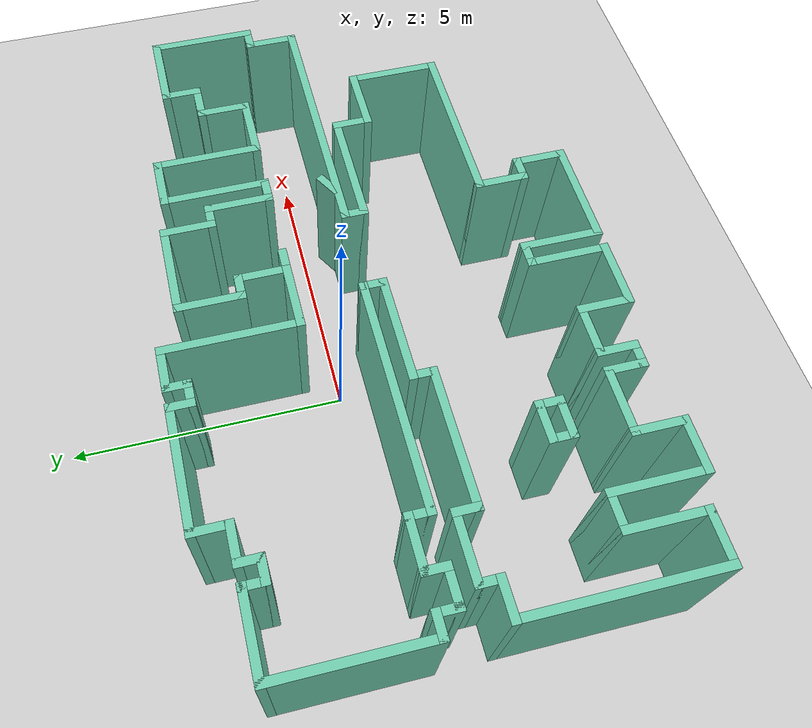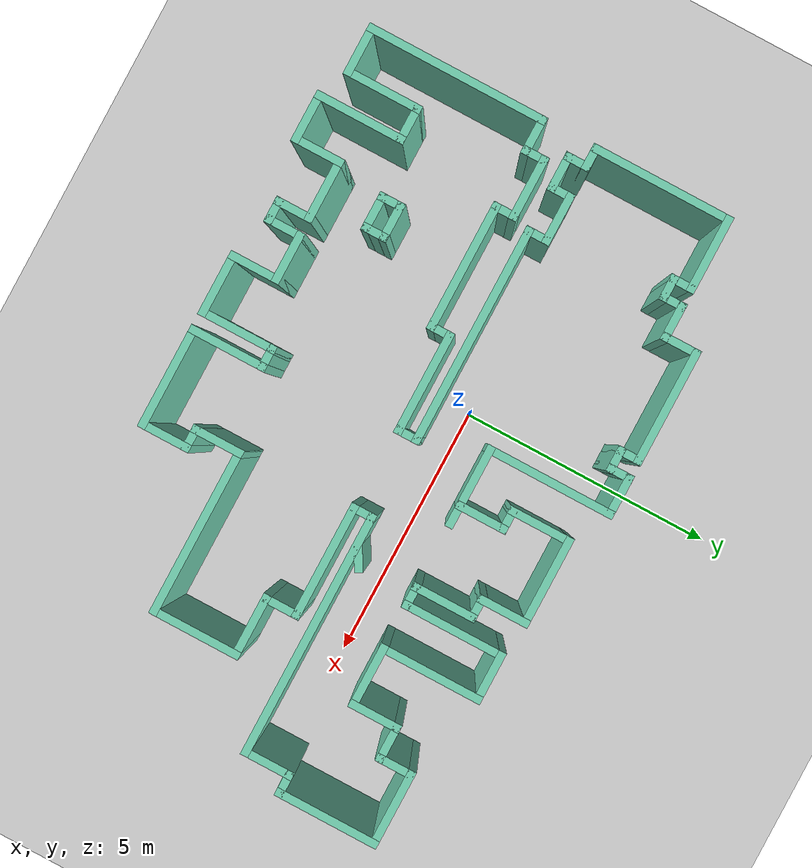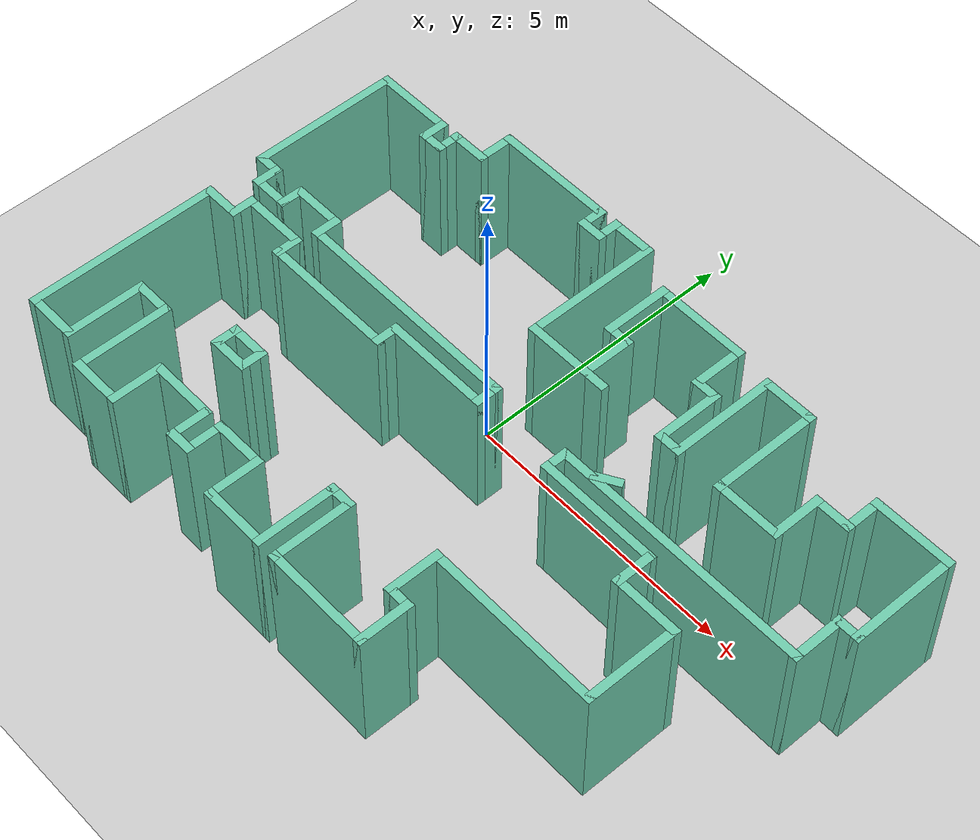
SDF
<sdf version="1.6">
 <world name="default">
  <model name="ground_plane">
   <static>1</static>
   <link name="link">
    <collision name="collision">
     <geometry><plane><normal>0 0 1</normal><size>100 100</size></plane></geometry>
     <surface><friction><ode><mu>100</mu><mu2>50</mu2></ode></friction></surface>
    </collision>
    <visual name="visual">
     <cast_shadows>0</cast_shadows>
     <geometry><plane><normal>0 0 1</normal><size>100 100</size></plane></geometry>
     <material>
      <script><uri>file://media/materials/scripts/gazebo.material</uri><name>Gazebo/Grey</name></script>
     </material>
    </visual>
   </link>
  </model>
  <model name="map_89">
   <pose>1.14786 -0.969394 0 0 -0 0</pose>
   <link name="Wall_10">
    <collision name="Wall_10_Collision">
     <geometry><box><size>0.5 0.15 2.5</size></box></geometry>
     <pose>0 0 1.25 0 -0 0</pose>
    </collision>
    <visual name="Wall_10_Visual">
     <pose>0 0 1.25 0 -0 0</pose>
     <geometry><box><size>0.5 0.15 2.5</size></box></geometry>
     <material>
      <script><uri>file://media/materials/scripts/gazebo.material</uri><name>Gazebo/Grey</name></script>
      <ambient>0.435294 0.796078 0.67451 1</ambient>
     </material>
     <meta><layer>0</layer></meta>
    </visual>
    <pose>-4.675 2.975 0 0 -0 3.14159</pose>
   </link>
   <link name="Wall_100">
    <collision name="Wall_100_Collision">
     <geometry><box><size>0.5 0.15 2.5</size></box></geometry>
     <pose>0 0 1.25 0 -0 0</pose>
    </collision>
    <visual name="Wall_100_Visual">
     <pose>0 0 1.25 0 -0 0</pose>
     <geometry><box><size>0.5 0.15 2.5</size></box></geometry>
     <material>
      <script><uri>file://media/materials/scripts/gazebo.material</uri><name>Gazebo/Grey</name></script>
      <ambient>0.435294 0.796078 0.67451 1</ambient>
     </material>
     <meta><layer>0</layer></meta>
    </visual>
    <pose>-3.1182 -1.95837 0 0 -0 1.5708</pose>
   </link>
   <link name="Wall_101">
    <collision name="Wall_101_Collision">
     <geometry><box><size>0.75 0.15 2.5</size></box></geometry>
     <pose>0 0 1.25 0 -0 0</pose>
    </collision>
    <visual name="Wall_101_Visual">
     <pose>0 0 1.25 0 -0 0</pose>
     <geometry><box><size>0.75 0.15 2.5</size></box></geometry>
     <material>
      <script><uri>file://media/materials/scripts/gazebo.material</uri><name>Gazebo/Grey</name></script>
      <ambient>0.435294 0.796078 0.67451 1</ambient>
     </material>
     <meta><layer>0</layer></meta>
    </visual>
    <pose>-3.41819 -1.78337 0 0 -0 3.14159</pose>
   </link>
   <link name="Wall_11">
    <collision name="Wall_11_Collision">
     <geometry><box><size>0.5 0.15 2.5</size></box></geometry>
     <pose>0 0 1.25 0 -0 0</pose>
    </collision>
    <visual name="Wall_11_Visual">
     <pose>0 0 1.25 0 -0 0</pose>
     <geometry><box><size>0.5 0.15 2.5</size></box></geometry>
     <material>
      <script><uri>file://media/materials/scripts/gazebo.material</uri><name>Gazebo/Grey</name></script>
      <ambient>0.435294 0.796078 0.67451 1</ambient>
     </material>
     <meta><layer>0</layer></meta>
    </visual>
    <pose>-4.85 3.15 0 0 -0 1.5708</pose>
   </link>
   <link name="Wall_12">
    <collision name="Wall_12_Collision">
     <geometry><box><size>1.5 0.15 2.5</size></box></geometry>
     <pose>0 0 1.25 0 -0 0</pose>
    </collision>
    <visual name="Wall_12_Visual">
     <pose>0 0 1.25 0 -0 0</pose>
     <geometry><box><size>1.5 0.15 2.5</size></box></geometry>
     <material>
      <script><uri>file://media/materials/scripts/gazebo.material</uri><name>Gazebo/Grey</name></script>
      <ambient>0.435294 0.796078 0.67451 1</ambient>
     </material>
     <meta><layer>0</layer></meta>
    </visual>
    <pose>-5.525 3.325 0 0 -0 3.14159</pose>
   </link>
   <link name="Wall_13">
    <collision name="Wall_13_Collision">
     <geometry><box><size>2.75 0.15 2.5</size></box></geometry>
     <pose>0 0 1.25 0 -0 0</pose>
    </collision>
    <visual name="Wall_13_Visual">
     <pose>0 0 1.25 0 -0 0</pose>
     <geometry><box><size>2.75 0.15 2.5</size></box></geometry>
     <material>
      <script><uri>file://media/materials/scripts/gazebo.material</uri><name>Gazebo/Grey</name></script>
      <ambient>0.435294 0.796078 0.67451 1</ambient>
     </material>
     <meta><layer>0</layer></meta>
    </visual>
    <pose>-6.2 2.025 0 0 -0 -1.5708</pose>
   </link>
   <link name="Wall_14">
    <collision name="Wall_14_Collision">
     <geometry><box><size>0.5 0.15 2.5</size></box></geometry>
     <pose>0 0 1.25 0 -0 0</pose>
    </collision>
    <visual name="Wall_14_Visual">
     <pose>0 0 1.25 0 -0 0</pose>
     <geometry><box><size>0.5 0.15 2.5</size></box></geometry>
     <material>
      <script><uri>file://media/materials/scripts/gazebo.material</uri><name>Gazebo/Grey</name></script>
      <ambient>0.435294 0.796078 0.67451 1</ambient>
     </material>
     <meta><layer>0</layer></meta>
    </visual>
    <pose>-6.025 0.725 0 0 -0 0</pose>
   </link>
   <link name="Wall_15">
    <collision name="Wall_15_Collision">
     <geometry><box><size>0.5 0.15 2.5</size></box></geometry>
     <pose>0 0 1.25 0 -0 0</pose>
    </collision>
    <visual name="Wall_15_Visual">
     <pose>0 0 1.25 0 -0 0</pose>
     <geometry><box><size>0.5 0.15 2.5</size></box></geometry>
     <material>
      <script><uri>file://media/materials/scripts/gazebo.material</uri><name>Gazebo/Grey</name></script>
      <ambient>0.435294 0.796078 0.67451 1</ambient>
     </material>
     <meta><layer>0</layer></meta>
    </visual>
    <pose>-5.85 0.55 0 0 -0 -1.5708</pose>
   </link>
   <link name="Wall_16">
    <collision name="Wall_16_Collision">
     <geometry><box><size>0.75 0.15 2.5</size></box></geometry>
     <pose>0 0 1.25 0 -0 0</pose>
    </collision>
    <visual name="Wall_16_Visual">
     <pose>0 0 1.25 0 -0 0</pose>
     <geometry><box><size>0.75 0.15 2.5</size></box></geometry>
     <material>
      <script><uri>file://media/materials/scripts/gazebo.material</uri><name>Gazebo/Grey</name></script>
      <ambient>0.435294 0.796078 0.67451 1</ambient>
     </material>
     <meta><layer>0</layer></meta>
    </visual>
    <pose>-5.55 0.375 0 0 -0 0</pose>
   </link>
   <link name="Wall_17">
    <collision name="Wall_17_Collision">
     <geometry><box><size>0.5 0.15 2.5</size></box></geometry>
     <pose>0 0 1.25 0 -0 0</pose>
    </collision>
    <visual name="Wall_17_Visual">
     <pose>0 0 1.25 0 -0 0</pose>
     <geometry><box><size>0.5 0.15 2.5</size></box></geometry>
     <material>
      <script><uri>file://media/materials/scripts/gazebo.material</uri><name>Gazebo/Grey</name></script>
      <ambient>0.435294 0.796078 0.67451 1</ambient>
     </material>
     <meta><layer>0</layer></meta>
    </visual>
    <pose>-5.25 0.55 0 0 -0 1.5708</pose>
   </link>
   <link name="Wall_18">
    <collision name="Wall_18_Collision">
     <geometry><box><size>1 0.15 2.5</size></box></geometry>
     <pose>0 0 1.25 0 -0 0</pose>
    </collision>
    <visual name="Wall_18_Visual">
     <pose>0 0 1.25 0 -0 0</pose>
     <geometry><box><size>1 0.15 2.5</size></box></geometry>
     <material>
      <script><uri>file://media/materials/scripts/gazebo.material</uri><name>Gazebo/Grey</name></script>
      <ambient>0.435294 0.796078 0.67451 1</ambient>
     </material>
     <meta><layer>0</layer></meta>
    </visual>
    <pose>-4.825 0.725 0 0 -0 0</pose>
   </link>
   <link name="Wall_19">
    <collision name="Wall_19_Collision">
     <geometry><box><size>0.5 0.15 2.5</size></box></geometry>
     <pose>0 0 1.25 0 -0 0</pose>
    </collision>
    <visual name="Wall_19_Visual">
     <pose>0 0 1.25 0 -0 0</pose>
     <geometry><box><size>0.5 0.15 2.5</size></box></geometry>
     <material>
      <script><uri>file://media/materials/scripts/gazebo.material</uri><name>Gazebo/Grey</name></script>
      <ambient>0.435294 0.796078 0.67451 1</ambient>
     </material>
     <meta><layer>0</layer></meta>
    </visual>
    <pose>-4.4 0.55 0 0 -0 -1.5708</pose>
   </link>
   <link name="Wall_2">
    <collision name="Wall_2_Collision">
     <geometry><box><size>0.75 0.15 2.5</size></box></geometry>
     <pose>0 0 1.25 0 -0 0</pose>
    </collision>
    <visual name="Wall_2_Visual">
     <pose>0 0 1.25 0 -0 0</pose>
     <geometry><box><size>0.75 0.15 2.5</size></box></geometry>
     <material>
      <script><uri>file://media/materials/scripts/gazebo.material</uri><name>Gazebo/Grey</name></script>
      <ambient>0.435294 0.796078 0.67451 1</ambient>
     </material>
     <meta><layer>0</layer></meta>
    </visual>
    <pose>-1.15 3.925 0 0 -0 3.14159</pose>
   </link>
   <link name="Wall_20">
    <collision name="Wall_20_Collision">
     <geometry><box><size>4.25 0.15 2.5</size></box></geometry>
     <pose>0 0 1.25 0 -0 0</pose>
    </collision>
    <visual name="Wall_20_Visual">
     <pose>0 0 1.25 0 -0 0</pose>
     <geometry><box><size>4.25 0.15 2.5</size></box></geometry>
     <material>
      <script><uri>file://media/materials/scripts/gazebo.material</uri><name>Gazebo/Grey</name></script>
      <ambient>0.435294 0.796078 0.67451 1</ambient>
     </material>
     <meta><layer>0</layer></meta>
    </visual>
    <pose>-2.35 0.375 0 0 -0 0</pose>
   </link>
   <link name="Wall_21">
    <collision name="Wall_21_Collision">
     <geometry><box><size>0.5 0.15 2.5</size></box></geometry>
     <pose>0 0 1.25 0 -0 0</pose>
    </collision>
    <visual name="Wall_21_Visual">
     <pose>0 0 1.25 0 -0 0</pose>
     <geometry><box><size>0.5 0.15 2.5</size></box></geometry>
     <material>
      <script><uri>file://media/materials/scripts/gazebo.material</uri><name>Gazebo/Grey</name></script>
      <ambient>0.435294 0.796078 0.67451 1</ambient>
     </material>
     <meta><layer>0</layer></meta>
    </visual>
    <pose>-0.3 0.2 0 0 -0 -1.5708</pose>
   </link>
   <link name="Wall_22">
    <collision name="Wall_22_Collision">
     <geometry><box><size>2 0.15 2.5</size></box></geometry>
     <pose>0 0 1.25 0 -0 0</pose>
    </collision>
    <visual name="Wall_22_Visual">
     <pose>0 0 1.25 0 -0 0</pose>
     <geometry><box><size>2 0.15 2.5</size></box></geometry>
     <material>
      <script><uri>file://media/materials/scripts/gazebo.material</uri><name>Gazebo/Grey</name></script>
      <ambient>0.435294 0.796078 0.67451 1</ambient>
     </material>
     <meta><layer>0</layer></meta>
    </visual>
    <pose>-1.225 0.025 0 0 -0 3.14159</pose>
   </link>
   <link name="Wall_23">
    <collision name="Wall_23_Collision">
     <geometry><box><size>0.5 0.15 2.5</size></box></geometry>
     <pose>0 0 1.25 0 -0 0</pose>
    </collision>
    <visual name="Wall_23_Visual">
     <pose>0 0 1.25 0 -0 0</pose>
     <geometry><box><size>0.5 0.15 2.5</size></box></geometry>
     <material>
      <script><uri>file://media/materials/scripts/gazebo.material</uri><name>Gazebo/Grey</name></script>
      <ambient>0.435294 0.796078 0.67451 1</ambient>
     </material>
     <meta><layer>0</layer></meta>
    </visual>
    <pose>-2.15 -0.15 0 0 -0 -1.5708</pose>
   </link>
   <link name="Wall_24">
    <collision name="Wall_24_Collision">
     <geometry><box><size>2.5 0.15 2.5</size></box></geometry>
     <pose>0 0 1.25 0 -0 0</pose>
    </collision>
    <visual name="Wall_24_Visual">
     <pose>0 0 1.25 0 -0 0</pose>
     <geometry><box><size>2.5 0.15 2.5</size></box></geometry>
     <material>
      <script><uri>file://media/materials/scripts/gazebo.material</uri><name>Gazebo/Grey</name></script>
      <ambient>0.435294 0.796078 0.67451 1</ambient>
     </material>
     <meta><layer>0</layer></meta>
    </visual>
    <pose>-3.325 -0.325 0 0 -0 3.14159</pose>
   </link>
   <link name="Wall_25">
    <collision name="Wall_25_Collision">
     <geometry><box><size>0.5 0.15 2.5</size></box></geometry>
     <pose>0 0 1.25 0 -0 0</pose>
    </collision>
    <visual name="Wall_25_Visual">
     <pose>0 0 1.25 0 -0 0</pose>
     <geometry><box><size>0.5 0.15 2.5</size></box></geometry>
     <material>
      <script><uri>file://media/materials/scripts/gazebo.material</uri><name>Gazebo/Grey</name></script>
      <ambient>0.435294 0.796078 0.67451 1</ambient>
     </material>
     <meta><layer>0</layer></meta>
    </visual>
    <pose>-4.5 -0.15 0 0 -0 1.5708</pose>
   </link>
   <link name="Wall_26">
    <collision name="Wall_26_Collision">
     <geometry><box><size>1.25 0.15 2.5</size></box></geometry>
     <pose>0 0 1.25 0 -0 0</pose>
    </collision>
    <visual name="Wall_26_Visual">
     <pose>0 0 1.25 0 -0 0</pose>
     <geometry><box><size>1.25 0.15 2.5</size></box></geometry>
     <material>
      <script><uri>file://media/materials/scripts/gazebo.material</uri><name>Gazebo/Grey</name></script>
      <ambient>0.435294 0.796078 0.67451 1</ambient>
     </material>
     <meta><layer>0</layer></meta>
    </visual>
    <pose>-5.05 0.025 0 0 -0 3.14159</pose>
   </link>
   <link name="Wall_27">
    <collision name="Wall_27_Collision">
     <geometry><box><size>0.5 0.15 2.5</size></box></geometry>
     <pose>0 0 1.25 0 -0 0</pose>
    </collision>
    <visual name="Wall_27_Visual">
     <pose>0 0 1.25 0 -0 0</pose>
     <geometry><box><size>0.5 0.15 2.5</size></box></geometry>
     <material>
      <script><uri>file://media/materials/scripts/gazebo.material</uri><name>Gazebo/Grey</name></script>
      <ambient>0.435294 0.796078 0.67451 1</ambient>
     </material>
     <meta><layer>0</layer></meta>
    </visual>
    <pose>-5.6 -0.15 0 0 -0 -1.5708</pose>
   </link>
   <link name="Wall_28">
    <collision name="Wall_28_Collision">
     <geometry><box><size>0.75 0.15 2.5</size></box></geometry>
     <pose>0 0 1.25 0 -0 0</pose>
    </collision>
    <visual name="Wall_28_Visual">
     <pose>0 0 1.25 0 -0 0</pose>
     <geometry><box><size>0.75 0.15 2.5</size></box></geometry>
     <material>
      <script><uri>file://media/materials/scripts/gazebo.material</uri><name>Gazebo/Grey</name></script>
      <ambient>0.435294 0.796078 0.67451 1</ambient>
     </material>
     <meta><layer>0</layer></meta>
    </visual>
    <pose>-5.9 -0.325 0 0 -0 3.14159</pose>
   </link>
   <link name="Wall_29">
    <collision name="Wall_29_Collision">
     <geometry><box><size>3.5 0.15 2.5</size></box></geometry>
     <pose>0 0 1.25 0 -0 0</pose>
    </collision>
    <visual name="Wall_29_Visual">
     <pose>0 0 1.25 0 -0 0</pose>
     <geometry><box><size>3.5 0.15 2.5</size></box></geometry>
     <material>
      <script><uri>file://media/materials/scripts/gazebo.material</uri><name>Gazebo/Grey</name></script>
      <ambient>0.435294 0.796078 0.67451 1</ambient>
     </material>
     <meta><layer>0</layer></meta>
    </visual>
    <pose>-6.2 -2 0 0 -0 -1.5708</pose>
   </link>
   <link name="Wall_3">
    <collision name="Wall_3_Collision">
     <geometry><box><size>0.5 0.15 2.5</size></box></geometry>
     <pose>0 0 1.25 0 -0 0</pose>
    </collision>
    <visual name="Wall_3_Visual">
     <pose>0 0 1.25 0 -0 0</pose>
     <geometry><box><size>0.5 0.15 2.5</size></box></geometry>
     <material>
      <script><uri>file://media/materials/scripts/gazebo.material</uri><name>Gazebo/Grey</name></script>
      <ambient>0.435294 0.796078 0.67451 1</ambient>
     </material>
     <meta><layer>0</layer></meta>
    </visual>
    <pose>-1.45 3.75 0 0 -0 -1.5708</pose>
   </link>
   <link name="Wall_30">
    <collision name="Wall_30_Collision">
     <geometry><box><size>1 0.15 2.5</size></box></geometry>
     <pose>0 0 1.25 0 -0 0</pose>
    </collision>
    <visual name="Wall_30_Visual">
     <pose>0 0 1.25 0 -0 0</pose>
     <geometry><box><size>1 0.15 2.5</size></box></geometry>
     <material>
      <script><uri>file://media/materials/scripts/gazebo.material</uri><name>Gazebo/Grey</name></script>
      <ambient>0.435294 0.796078 0.67451 1</ambient>
     </material>
     <meta><layer>0</layer></meta>
    </visual>
    <pose>-5.775 -3.675 0 0 -0 0</pose>
   </link>
   <link name="Wall_31">
    <collision name="Wall_31_Collision">
     <geometry><box><size>1.5 0.15 2.5</size></box></geometry>
     <pose>0 0 1.25 0 -0 0</pose>
    </collision>
    <visual name="Wall_31_Visual">
     <pose>0 0 1.25 0 -0 0</pose>
     <geometry><box><size>1.5 0.15 2.5</size></box></geometry>
     <material>
      <script><uri>file://media/materials/scripts/gazebo.material</uri><name>Gazebo/Grey</name></script>
      <ambient>0.435294 0.796078 0.67451 1</ambient>
     </material>
     <meta><layer>0</layer></meta>
    </visual>
    <pose>-5.35 -3 0 0 -0 1.5708</pose>
   </link>
   <link name="Wall_32">
    <collision name="Wall_32_Collision">
     <geometry><box><size>0.75 0.15 2.5</size></box></geometry>
     <pose>0 0 1.25 0 -0 0</pose>
    </collision>
    <visual name="Wall_32_Visual">
     <pose>0 0 1.25 0 -0 0</pose>
     <geometry><box><size>0.75 0.15 2.5</size></box></geometry>
     <material>
      <script><uri>file://media/materials/scripts/gazebo.material</uri><name>Gazebo/Grey</name></script>
      <ambient>0.435294 0.796078 0.67451 1</ambient>
     </material>
     <meta><layer>0</layer></meta>
    </visual>
    <pose>-5.05 -2.325 0 0 -0 0</pose>
   </link>
   <link name="Wall_33">
    <collision name="Wall_33_Collision">
     <geometry><box><size>1.75 0.15 2.5</size></box></geometry>
     <pose>0 0 1.25 0 -0 0</pose>
    </collision>
    <visual name="Wall_33_Visual">
     <pose>0 0 1.25 0 -0 0</pose>
     <geometry><box><size>1.75 0.15 2.5</size></box></geometry>
     <material>
      <script><uri>file://media/materials/scripts/gazebo.material</uri><name>Gazebo/Grey</name></script>
      <ambient>0.435294 0.796078 0.67451 1</ambient>
     </material>
     <meta><layer>0</layer></meta>
    </visual>
    <pose>-4.75 -3.125 0 0 -0 -1.5708</pose>
   </link>
   <link name="Wall_34">
    <collision name="Wall_34_Collision">
     <geometry><box><size>1 0.15 2.5</size></box></geometry>
     <pose>0 0 1.25 0 -0 0</pose>
    </collision>
    <visual name="Wall_34_Visual">
     <pose>0 0 1.25 0 -0 0</pose>
     <geometry><box><size>1 0.15 2.5</size></box></geometry>
     <material>
      <script><uri>file://media/materials/scripts/gazebo.material</uri><name>Gazebo/Grey</name></script>
      <ambient>0.435294 0.796078 0.67451 1</ambient>
     </material>
     <meta><layer>0</layer></meta>
    </visual>
    <pose>-4.325 -3.925 0 0 -0 0</pose>
   </link>
   <link name="Wall_37">
    <collision name="Wall_37_Collision">
     <geometry><box><size>1 0.15 2.5</size></box></geometry>
     <pose>0 0 1.25 0 -0 0</pose>
    </collision>
    <visual name="Wall_37_Visual">
     <pose>0 0 1.25 0 -0 0</pose>
     <geometry><box><size>1 0.15 2.5</size></box></geometry>
     <material>
      <script><uri>file://media/materials/scripts/gazebo.material</uri><name>Gazebo/Grey</name></script>
      <ambient>0.435294 0.796078 0.67451 1</ambient>
     </material>
     <meta><layer>0</layer></meta>
    </visual>
    <pose>-3.9 -3.5 0 0 -0 1.5708</pose>
   </link>
   <link name="Wall_38">
    <collision name="Wall_38_Collision">
     <geometry><box><size>1.25 0.15 2.5</size></box></geometry>
     <pose>0 0 1.25 0 -0 0</pose>
    </collision>
    <visual name="Wall_38_Visual">
     <pose>0 0 1.25 0 -0 0</pose>
     <geometry><box><size>1.25 0.15 2.5</size></box></geometry>
     <material>
      <script><uri>file://media/materials/scripts/gazebo.material</uri><name>Gazebo/Grey</name></script>
      <ambient>0.435294 0.796078 0.67451 1</ambient>
     </material>
     <meta><layer>0</layer></meta>
    </visual>
    <pose>-3.35 -3.075 0 0 -0 0</pose>
   </link>
   <link name="Wall_39">
    <collision name="Wall_39_Collision">
     <geometry><box><size>0.75 0.15 2.5</size></box></geometry>
     <pose>0 0 1.25 0 -0 0</pose>
    </collision>
    <visual name="Wall_39_Visual">
     <pose>0 0 1.25 0 -0 0</pose>
     <geometry><box><size>0.75 0.15 2.5</size></box></geometry>
     <material>
      <script><uri>file://media/materials/scripts/gazebo.material</uri><name>Gazebo/Grey</name></script>
      <ambient>0.435294 0.796078 0.67451 1</ambient>
     </material>
     <meta><layer>0</layer></meta>
    </visual>
    <pose>-2.8 -3.375 0 0 -0 -1.5708</pose>
   </link>
   <link name="Wall_4">
    <collision name="Wall_4_Collision">
     <geometry><box><size>0.5 0.15 2.5</size></box></geometry>
     <pose>0 0 1.25 0 -0 0</pose>
    </collision>
    <visual name="Wall_4_Visual">
     <pose>0 0 1.25 0 -0 0</pose>
     <geometry><box><size>0.5 0.15 2.5</size></box></geometry>
     <material>
      <script><uri>file://media/materials/scripts/gazebo.material</uri><name>Gazebo/Grey</name></script>
      <ambient>0.435294 0.796078 0.67451 1</ambient>
     </material>
     <meta><layer>0</layer></meta>
    </visual>
    <pose>-1.625 3.575 0 0 -0 3.14159</pose>
   </link>
   <link name="Wall_40">
    <collision name="Wall_40_Collision">
     <geometry><box><size>0.5 0.15 2.5</size></box></geometry>
     <pose>0 0 1.25 0 -0 0</pose>
    </collision>
    <visual name="Wall_40_Visual">
     <pose>0 0 1.25 0 -0 0</pose>
     <geometry><box><size>0.5 0.15 2.5</size></box></geometry>
     <material>
      <script><uri>file://media/materials/scripts/gazebo.material</uri><name>Gazebo/Grey</name></script>
      <ambient>0.435294 0.796078 0.67451 1</ambient>
     </material>
     <meta><layer>0</layer></meta>
    </visual>
    <pose>-2.625 -3.675 0 0 -0 0</pose>
   </link>
   <link name="Wall_41">
    <collision name="Wall_41_Collision">
     <geometry><box><size>0.75 0.15 2.5</size></box></geometry>
     <pose>0 0 1.25 0 -0 0</pose>
    </collision>
    <visual name="Wall_41_Visual">
     <pose>0 0 1.25 0 -0 0</pose>
     <geometry><box><size>0.75 0.15 2.5</size></box></geometry>
     <material>
      <script><uri>file://media/materials/scripts/gazebo.material</uri><name>Gazebo/Grey</name></script>
      <ambient>0.435294 0.796078 0.67451 1</ambient>
     </material>
     <meta><layer>0</layer></meta>
    </visual>
    <pose>-2.45 -3.375 0 0 -0 1.5708</pose>
   </link>
   <link name="Wall_42">
    <collision name="Wall_42_Collision">
     <geometry><box><size>1 0.15 2.5</size></box></geometry>
     <pose>0 0 1.25 0 -0 0</pose>
    </collision>
    <visual name="Wall_42_Visual">
     <pose>0 0 1.25 0 -0 0</pose>
     <geometry><box><size>1 0.15 2.5</size></box></geometry>
     <material>
      <script><uri>file://media/materials/scripts/gazebo.material</uri><name>Gazebo/Grey</name></script>
      <ambient>0.435294 0.796078 0.67451 1</ambient>
     </material>
     <meta><layer>0</layer></meta>
    </visual>
    <pose>-2.025 -3.075 0 0 -0 0</pose>
   </link>
   <link name="Wall_43">
    <collision name="Wall_43_Collision">
     <geometry><box><size>1 0.15 2.5</size></box></geometry>
     <pose>0 0 1.25 0 -0 0</pose>
    </collision>
    <visual name="Wall_43_Visual">
     <pose>0 0 1.25 0 -0 0</pose>
     <geometry><box><size>1 0.15 2.5</size></box></geometry>
     <material>
      <script><uri>file://media/materials/scripts/gazebo.material</uri><name>Gazebo/Grey</name></script>
      <ambient>0.435294 0.796078 0.67451 1</ambient>
     </material>
     <meta><layer>0</layer></meta>
    </visual>
    <pose>-1.6 -3.5 0 0 -0 -1.5708</pose>
   </link>
   <link name="Wall_46">
    <collision name="Wall_46_Collision">
     <geometry><box><size>1.25 0.15 2.5</size></box></geometry>
     <pose>0 0 1.25 0 -0 0</pose>
    </collision>
    <visual name="Wall_46_Visual">
     <pose>0 0 1.25 0 -0 0</pose>
     <geometry><box><size>1.25 0.15 2.5</size></box></geometry>
     <material>
      <script><uri>file://media/materials/scripts/gazebo.material</uri><name>Gazebo/Grey</name></script>
      <ambient>0.435294 0.796078 0.67451 1</ambient>
     </material>
     <meta><layer>0</layer></meta>
    </visual>
    <pose>-1.05 -3.925 0 0 -0 0</pose>
   </link>
   <link name="Wall_47">
    <collision name="Wall_47_Collision">
     <geometry><box><size>1.5 0.15 2.5</size></box></geometry>
     <pose>0 0 1.25 0 -0 0</pose>
    </collision>
    <visual name="Wall_47_Visual">
     <pose>0 0 1.25 0 -0 0</pose>
     <geometry><box><size>1.5 0.15 2.5</size></box></geometry>
     <material>
      <script><uri>file://media/materials/scripts/gazebo.material</uri><name>Gazebo/Grey</name></script>
      <ambient>0.435294 0.796078 0.67451 1</ambient>
     </material>
     <meta><layer>0</layer></meta>
    </visual>
    <pose>-0.5 -3.25 0 0 -0 1.5708</pose>
   </link>
   <link name="Wall_5">
    <collision name="Wall_5_Collision">
     <geometry><box><size>0.5 0.15 2.5</size></box></geometry>
     <pose>0 0 1.25 0 -0 0</pose>
    </collision>
    <visual name="Wall_5_Visual">
     <pose>0 0 1.25 0 -0 0</pose>
     <geometry><box><size>0.5 0.15 2.5</size></box></geometry>
     <material>
      <script><uri>file://media/materials/scripts/gazebo.material</uri><name>Gazebo/Grey</name></script>
      <ambient>0.435294 0.796078 0.67451 1</ambient>
     </material>
     <meta><layer>0</layer></meta>
    </visual>
    <pose>-1.8 3.75 0 0 -0 1.5708</pose>
   </link>
   <link name="Wall_50">
    <collision name="Wall_50_Collision">
     <geometry><box><size>0.5 0.15 2.5</size></box></geometry>
     <pose>0 0 1.25 0 -0 0</pose>
    </collision>
    <visual name="Wall_50_Visual">
     <pose>0 0 1.25 0 -0 0</pose>
     <geometry><box><size>0.5 0.15 2.5</size></box></geometry>
     <material>
      <script><uri>file://media/materials/scripts/gazebo.material</uri><name>Gazebo/Grey</name></script>
      <ambient>0.435294 0.796078 0.67451 1</ambient>
     </material>
     <meta><layer>0</layer></meta>
    </visual>
    <pose>-0.325 -2.575 0 0 -0 0</pose>
   </link>
   <link name="Wall_51">
    <collision name="Wall_51_Collision">
     <geometry><box><size>1.5 0.15 2.5</size></box></geometry>
     <pose>0 0 1.25 0 -0 0</pose>
    </collision>
    <visual name="Wall_51_Visual">
     <pose>0 0 1.25 0 -0 0</pose>
     <geometry><box><size>1.5 0.15 2.5</size></box></geometry>
     <material>
      <script><uri>file://media/materials/scripts/gazebo.material</uri><name>Gazebo/Grey</name></script>
      <ambient>0.435294 0.796078 0.67451 1</ambient>
     </material>
     <meta><layer>0</layer></meta>
    </visual>
    <pose>-0.15 -3.25 0 0 -0 -1.5708</pose>
   </link>
   <link name="Wall_52">
    <collision name="Wall_52_Collision">
     <geometry><box><size>2 0.15 2.5</size></box></geometry>
     <pose>0 0 1.25 0 -0 0</pose>
    </collision>
    <visual name="Wall_52_Visual">
     <pose>0 0 1.25 0 -0 0</pose>
     <geometry><box><size>2 0.15 2.5</size></box></geometry>
     <material>
      <script><uri>file://media/materials/scripts/gazebo.material</uri><name>Gazebo/Grey</name></script>
      <ambient>0.435294 0.796078 0.67451 1</ambient>
     </material>
     <meta><layer>0</layer></meta>
    </visual>
    <pose>0.775 -3.925 0 0 -0 0</pose>
   </link>
   <link name="Wall_53">
    <collision name="Wall_53_Collision">
     <geometry><box><size>1 0.15 2.5</size></box></geometry>
     <pose>0 0 1.25 0 -0 0</pose>
    </collision>
    <visual name="Wall_53_Visual">
     <pose>0 0 1.25 0 -0 0</pose>
     <geometry><box><size>1 0.15 2.5</size></box></geometry>
     <material>
      <script><uri>file://media/materials/scripts/gazebo.material</uri><name>Gazebo/Grey</name></script>
      <ambient>0.435294 0.796078 0.67451 1</ambient>
     </material>
     <meta><layer>0</layer></meta>
    </visual>
    <pose>1.7 -3.5 0 0 -0 1.5708</pose>
   </link>
   <link name="Wall_54">
    <collision name="Wall_54_Collision">
     <geometry><box><size>0.5 0.15 2.5</size></box></geometry>
     <pose>0 0 1.25 0 -0 0</pose>
    </collision>
    <visual name="Wall_54_Visual">
     <pose>0 0 1.25 0 -0 0</pose>
     <geometry><box><size>0.5 0.15 2.5</size></box></geometry>
     <material>
      <script><uri>file://media/materials/scripts/gazebo.material</uri><name>Gazebo/Grey</name></script>
      <ambient>0.435294 0.796078 0.67451 1</ambient>
     </material>
     <meta><layer>0</layer></meta>
    </visual>
    <pose>1.525 -3.075 0 0 -0 3.14159</pose>
   </link>
   <link name="Wall_55">
    <collision name="Wall_55_Collision">
     <geometry><box><size>1 0.15 2.5</size></box></geometry>
     <pose>0 0 1.25 0 -0 0</pose>
    </collision>
    <visual name="Wall_55_Visual">
     <pose>0 0 1.25 0 -0 0</pose>
     <geometry><box><size>1 0.15 2.5</size></box></geometry>
     <material>
      <script><uri>file://media/materials/scripts/gazebo.material</uri><name>Gazebo/Grey</name></script>
      <ambient>0.435294 0.796078 0.67451 1</ambient>
     </material>
     <meta><layer>0</layer></meta>
    </visual>
    <pose>1.35 -2.65 0 0 -0 1.5708</pose>
   </link>
   <link name="Wall_56">
    <collision name="Wall_56_Collision">
     <geometry><box><size>3.25 0.15 2.5</size></box></geometry>
     <pose>0 0 1.25 0 -0 0</pose>
    </collision>
    <visual name="Wall_56_Visual">
     <pose>0 0 1.25 0 -0 0</pose>
     <geometry><box><size>3.25 0.15 2.5</size></box></geometry>
     <material>
      <script><uri>file://media/materials/scripts/gazebo.material</uri><name>Gazebo/Grey</name></script>
      <ambient>0.435294 0.796078 0.67451 1</ambient>
     </material>
     <meta><layer>0</layer></meta>
    </visual>
    <pose>2.9 -2.225 0 0 -0 0</pose>
   </link>
   <link name="Wall_57">
    <collision name="Wall_57_Collision">
     <geometry><box><size>1.75 0.15 2.5</size></box></geometry>
     <pose>0 0 1.25 0 -0 0</pose>
    </collision>
    <visual name="Wall_57_Visual">
     <pose>0 0 1.25 0 -0 0</pose>
     <geometry><box><size>1.75 0.15 2.5</size></box></geometry>
     <material>
      <script><uri>file://media/materials/scripts/gazebo.material</uri><name>Gazebo/Grey</name></script>
      <ambient>0.435294 0.796078 0.67451 1</ambient>
     </material>
     <meta><layer>0</layer></meta>
    </visual>
    <pose>4.45 -1.425 0 0 -0 1.5708</pose>
   </link>
   <link name="Wall_58">
    <collision name="Wall_58_Collision">
     <geometry><box><size>1.25 0.15 2.5</size></box></geometry>
     <pose>0 0 1.25 0 -0 0</pose>
    </collision>
    <visual name="Wall_58_Visual">
     <pose>0 0 1.25 0 -0 0</pose>
     <geometry><box><size>1.25 0.15 2.5</size></box></geometry>
     <material>
      <script><uri>file://media/materials/scripts/gazebo.material</uri><name>Gazebo/Grey</name></script>
      <ambient>0.435294 0.796078 0.67451 1</ambient>
     </material>
     <meta><layer>0</layer></meta>
    </visual>
    <pose>3.9 -0.625 0 0 -0 3.14159</pose>
   </link>
   <link name="Wall_59">
    <collision name="Wall_59_Collision">
     <geometry><box><size>0.75 0.15 2.5</size></box></geometry>
     <pose>0 0 1.25 0 -0 0</pose>
    </collision>
    <visual name="Wall_59_Visual">
     <pose>0 0 1.25 0 -0 0</pose>
     <geometry><box><size>0.75 0.15 2.5</size></box></geometry>
     <material>
      <script><uri>file://media/materials/scripts/gazebo.material</uri><name>Gazebo/Grey</name></script>
      <ambient>0.435294 0.796078 0.67451 1</ambient>
     </material>
     <meta><layer>0</layer></meta>
    </visual>
    <pose>3.35 -0.325 0 0 -0 1.5708</pose>
   </link>
   <link name="Wall_6">
    <collision name="Wall_6_Collision">
     <geometry><box><size>2.25 0.15 2.5</size></box></geometry>
     <pose>0 0 1.25 0 -0 0</pose>
    </collision>
    <visual name="Wall_6_Visual">
     <pose>0 0 1.25 0 -0 0</pose>
     <geometry><box><size>2.25 0.15 2.5</size></box></geometry>
     <material>
      <script><uri>file://media/materials/scripts/gazebo.material</uri><name>Gazebo/Grey</name></script>
      <ambient>0.435294 0.796078 0.67451 1</ambient>
     </material>
     <meta><layer>0</layer></meta>
    </visual>
    <pose>-2.85 3.925 0 0 -0 3.14159</pose>
   </link>
   <link name="Wall_60">
    <collision name="Wall_60_Collision">
     <geometry><box><size>2.25 0.15 2.5</size></box></geometry>
     <pose>0 0 1.25 0 -0 0</pose>
    </collision>
    <visual name="Wall_60_Visual">
     <pose>0 0 1.25 0 -0 0</pose>
     <geometry><box><size>2.25 0.15 2.5</size></box></geometry>
     <material>
      <script><uri>file://media/materials/scripts/gazebo.material</uri><name>Gazebo/Grey</name></script>
      <ambient>0.435294 0.796078 0.67451 1</ambient>
     </material>
     <meta><layer>0</layer></meta>
    </visual>
    <pose>2.3 -0.025 0 0 -0 3.14159</pose>
   </link>
   <link name="Wall_61">
    <collision name="Wall_61_Collision">
     <geometry><box><size>0.5 0.15 2.5</size></box></geometry>
     <pose>0 0 1.25 0 -0 0</pose>
    </collision>
    <visual name="Wall_61_Visual">
     <pose>0 0 1.25 0 -0 0</pose>
     <geometry><box><size>0.5 0.15 2.5</size></box></geometry>
     <material>
      <script><uri>file://media/materials/scripts/gazebo.material</uri><name>Gazebo/Grey</name></script>
      <ambient>0.435294 0.796078 0.67451 1</ambient>
     </material>
     <meta><layer>0</layer></meta>
    </visual>
    <pose>1.25 0.15 0 0 -0 1.5708</pose>
   </link>
   <link name="Wall_62">
    <collision name="Wall_62_Collision">
     <geometry><box><size>4.75 0.15 2.5</size></box></geometry>
     <pose>0 0 1.25 0 -0 0</pose>
    </collision>
    <visual name="Wall_62_Visual">
     <pose>0 0 1.25 0 -0 0</pose>
     <geometry><box><size>4.75 0.15 2.5</size></box></geometry>
     <material>
      <script><uri>file://media/materials/scripts/gazebo.material</uri><name>Gazebo/Grey</name></script>
      <ambient>0.435294 0.796078 0.67451 1</ambient>
     </material>
     <meta><layer>0</layer></meta>
    </visual>
    <pose>3.55 0.325 0 0 -0 0</pose>
   </link>
   <link name="Wall_63">
    <collision name="Wall_63_Collision">
     <geometry><box><size>1 0.15 2.5</size></box></geometry>
     <pose>0 0 1.25 0 -0 0</pose>
    </collision>
    <visual name="Wall_63_Visual">
     <pose>0 0 1.25 0 -0 0</pose>
     <geometry><box><size>1 0.15 2.5</size></box></geometry>
     <material>
      <script><uri>file://media/materials/scripts/gazebo.material</uri><name>Gazebo/Grey</name></script>
      <ambient>0.435294 0.796078 0.67451 1</ambient>
     </material>
     <meta><layer>0</layer></meta>
    </visual>
    <pose>5.85 0.75 0 0 -0 1.5708</pose>
   </link>
   <link name="Wall_64">
    <collision name="Wall_64_Collision">
     <geometry><box><size>0.5 0.15 2.5</size></box></geometry>
     <pose>0 0 1.25 0 -0 0</pose>
    </collision>
    <visual name="Wall_64_Visual">
     <pose>0 0 1.25 0 -0 0</pose>
     <geometry><box><size>0.5 0.15 2.5</size></box></geometry>
     <material>
      <script><uri>file://media/materials/scripts/gazebo.material</uri><name>Gazebo/Grey</name></script>
      <ambient>0.435294 0.796078 0.67451 1</ambient>
     </material>
     <meta><layer>0</layer></meta>
    </visual>
    <pose>6.025 1.175 0 0 -0 0</pose>
   </link>
   <link name="Wall_65">
    <collision name="Wall_65_Collision">
     <geometry><box><size>2 0.15 2.5</size></box></geometry>
     <pose>0 0 1.25 0 -0 0</pose>
    </collision>
    <visual name="Wall_65_Visual">
     <pose>0 0 1.25 0 -0 0</pose>
     <geometry><box><size>2 0.15 2.5</size></box></geometry>
     <material>
      <script><uri>file://media/materials/scripts/gazebo.material</uri><name>Gazebo/Grey</name></script>
      <ambient>0.435294 0.796078 0.67451 1</ambient>
     </material>
     <meta><layer>0</layer></meta>
    </visual>
    <pose>6.2 2.1 0 0 -0 1.5708</pose>
   </link>
   <link name="Wall_66">
    <collision name="Wall_66_Collision">
     <geometry><box><size>1.5 0.15 2.5</size></box></geometry>
     <pose>0 0 1.25 0 -0 0</pose>
    </collision>
    <visual name="Wall_66_Visual">
     <pose>0 0 1.25 0 -0 0</pose>
     <geometry><box><size>1.5 0.15 2.5</size></box></geometry>
     <material>
      <script><uri>file://media/materials/scripts/gazebo.material</uri><name>Gazebo/Grey</name></script>
      <ambient>0.435294 0.796078 0.67451 1</ambient>
     </material>
     <meta><layer>0</layer></meta>
    </visual>
    <pose>5.525 3.025 0 0 -0 3.14159</pose>
   </link>
   <link name="Wall_67">
    <collision name="Wall_67_Collision">
     <geometry><box><size>0.75 0.15 2.5</size></box></geometry>
     <pose>0 0 1.25 0 -0 0</pose>
    </collision>
    <visual name="Wall_67_Visual">
     <pose>0 0 1.25 0 -0 0</pose>
     <geometry><box><size>0.75 0.15 2.5</size></box></geometry>
     <material>
      <script><uri>file://media/materials/scripts/gazebo.material</uri><name>Gazebo/Grey</name></script>
      <ambient>0.435294 0.796078 0.67451 1</ambient>
     </material>
     <meta><layer>0</layer></meta>
    </visual>
    <pose>4.85 2.725 0 0 -0 -1.5708</pose>
   </link>
   <link name="Wall_68">
    <collision name="Wall_68_Collision">
     <geometry><box><size>0.75 0.15 2.5</size></box></geometry>
     <pose>0 0 1.25 0 -0 0</pose>
    </collision>
    <visual name="Wall_68_Visual">
     <pose>0 0 1.25 0 -0 0</pose>
     <geometry><box><size>0.75 0.15 2.5</size></box></geometry>
     <material>
      <script><uri>file://media/materials/scripts/gazebo.material</uri><name>Gazebo/Grey</name></script>
      <ambient>0.435294 0.796078 0.67451 1</ambient>
     </material>
     <meta><layer>0</layer></meta>
    </visual>
    <pose>4.55 2.425 0 0 -0 3.14159</pose>
   </link>
   <link name="Wall_69">
    <collision name="Wall_69_Collision">
     <geometry><box><size>1 0.15 2.5</size></box></geometry>
     <pose>0 0 1.25 0 -0 0</pose>
    </collision>
    <visual name="Wall_69_Visual">
     <pose>0 0 1.25 0 -0 0</pose>
     <geometry><box><size>1 0.15 2.5</size></box></geometry>
     <material>
      <script><uri>file://media/materials/scripts/gazebo.material</uri><name>Gazebo/Grey</name></script>
      <ambient>0.435294 0.796078 0.67451 1</ambient>
     </material>
     <meta><layer>0</layer></meta>
    </visual>
    <pose>4.25 2 0 0 -0 -1.5708</pose>
   </link>
   <link name="Wall_7">
    <collision name="Wall_7_Collision">
     <geometry><box><size>0.75 0.15 2.5</size></box></geometry>
     <pose>0 0 1.25 0 -0 0</pose>
    </collision>
    <visual name="Wall_7_Visual">
     <pose>0 0 1.25 0 -0 0</pose>
     <geometry><box><size>0.75 0.15 2.5</size></box></geometry>
     <material>
      <script><uri>file://media/materials/scripts/gazebo.material</uri><name>Gazebo/Grey</name></script>
      <ambient>0.435294 0.796078 0.67451 1</ambient>
     </material>
     <meta><layer>0</layer></meta>
    </visual>
    <pose>-3.9 3.625 0 0 -0 -1.5708</pose>
   </link>
   <link name="Wall_70">
    <collision name="Wall_70_Collision">
     <geometry><box><size>1.25 0.15 2.5</size></box></geometry>
     <pose>0 0 1.25 0 -0 0</pose>
    </collision>
    <visual name="Wall_70_Visual">
     <pose>0 0 1.25 0 -0 0</pose>
     <geometry><box><size>1.25 0.15 2.5</size></box></geometry>
     <material>
      <script><uri>file://media/materials/scripts/gazebo.material</uri><name>Gazebo/Grey</name></script>
      <ambient>0.435294 0.796078 0.67451 1</ambient>
     </material>
     <meta><layer>0</layer></meta>
    </visual>
    <pose>3.7 1.575 0 0 -0 3.14159</pose>
   </link>
   <link name="Wall_71">
    <collision name="Wall_71_Collision">
     <geometry><box><size>2 0.15 2.5</size></box></geometry>
     <pose>0 0 1.25 0 -0 0</pose>
    </collision>
    <visual name="Wall_71_Visual">
     <pose>0 0 1.25 0 -0 0</pose>
     <geometry><box><size>2 0.15 2.5</size></box></geometry>
     <material>
      <script><uri>file://media/materials/scripts/gazebo.material</uri><name>Gazebo/Grey</name></script>
      <ambient>0.435294 0.796078 0.67451 1</ambient>
     </material>
     <meta><layer>0</layer></meta>
    </visual>
    <pose>3.15 2.5 0 0 -0 1.5708</pose>
   </link>
   <link name="Wall_72">
    <collision name="Wall_72_Collision">
     <geometry><box><size>1 0.15 2.5</size></box></geometry>
     <pose>0 0 1.25 0 -0 0</pose>
    </collision>
    <visual name="Wall_72_Visual">
     <pose>0 0 1.25 0 -0 0</pose>
     <geometry><box><size>1 0.15 2.5</size></box></geometry>
     <material>
      <script><uri>file://media/materials/scripts/gazebo.material</uri><name>Gazebo/Grey</name></script>
      <ambient>0.435294 0.796078 0.67451 1</ambient>
     </material>
     <meta><layer>0</layer></meta>
    </visual>
    <pose>2.725 3.425 0 0 -0 3.14159</pose>
   </link>
   <link name="Wall_73">
    <collision name="Wall_73_Collision">
     <geometry><box><size>2 0.15 2.5</size></box></geometry>
     <pose>0 0 1.25 0 -0 0</pose>
    </collision>
    <visual name="Wall_73_Visual">
     <pose>0 0 1.25 0 -0 0</pose>
     <geometry><box><size>2 0.15 2.5</size></box></geometry>
     <material>
      <script><uri>file://media/materials/scripts/gazebo.material</uri><name>Gazebo/Grey</name></script>
      <ambient>0.435294 0.796078 0.67451 1</ambient>
     </material>
     <meta><layer>0</layer></meta>
    </visual>
    <pose>2.3 2.5 0 0 -0 -1.5708</pose>
   </link>
   <link name="Wall_74">
    <collision name="Wall_74_Collision">
     <geometry><box><size>0.5 0.15 2.5</size></box></geometry>
     <pose>0 0 1.25 0 -0 0</pose>
    </collision>
    <visual name="Wall_74_Visual">
     <pose>0 0 1.25 0 -0 0</pose>
     <geometry><box><size>0.5 0.15 2.5</size></box></geometry>
     <material>
      <script><uri>file://media/materials/scripts/gazebo.material</uri><name>Gazebo/Grey</name></script>
      <ambient>0.435294 0.796078 0.67451 1</ambient>
     </material>
     <meta><layer>0</layer></meta>
    </visual>
    <pose>2.125 1.575 0 0 -0 3.14159</pose>
   </link>
   <link name="Wall_75">
    <collision name="Wall_75_Collision">
     <geometry><box><size>1.25 0.15 2.5</size></box></geometry>
     <pose>0 0 1.25 0 -0 0</pose>
    </collision>
    <visual name="Wall_75_Visual">
     <pose>0 0 1.25 0 -0 0</pose>
     <geometry><box><size>1.25 0.15 2.5</size></box></geometry>
     <material>
      <script><uri>file://media/materials/scripts/gazebo.material</uri><name>Gazebo/Grey</name></script>
      <ambient>0.435294 0.796078 0.67451 1</ambient>
     </material>
     <meta><layer>0</layer></meta>
    </visual>
    <pose>1.95 2.125 0 0 -0 1.5708</pose>
   </link>
   <link name="Wall_76">
    <collision name="Wall_76_Collision">
     <geometry><box><size>0.5 0.15 2.5</size></box></geometry>
     <pose>0 0 1.25 0 -0 0</pose>
    </collision>
    <visual name="Wall_76_Visual">
     <pose>0 0 1.25 0 -0 0</pose>
     <geometry><box><size>0.5 0.15 2.5</size></box></geometry>
     <material>
      <script><uri>file://media/materials/scripts/gazebo.material</uri><name>Gazebo/Grey</name></script>
      <ambient>0.435294 0.796078 0.67451 1</ambient>
     </material>
     <meta><layer>0</layer></meta>
    </visual>
    <pose>1.775 2.675 0 0 -0 3.14159</pose>
   </link>
   <link name="Wall_77">
    <collision name="Wall_77_Collision">
     <geometry><box><size>1 0.15 2.5</size></box></geometry>
     <pose>0 0 1.25 0 -0 0</pose>
    </collision>
    <visual name="Wall_77_Visual">
     <pose>0 0 1.25 0 -0 0</pose>
     <geometry><box><size>1 0.15 2.5</size></box></geometry>
     <material>
      <script><uri>file://media/materials/scripts/gazebo.material</uri><name>Gazebo/Grey</name></script>
      <ambient>0.435294 0.796078 0.67451 1</ambient>
     </material>
     <meta><layer>0</layer></meta>
    </visual>
    <pose>1.6 3.1 0 0 -0 1.5708</pose>
   </link>
   <link name="Wall_78">
    <collision name="Wall_78_Collision">
     <geometry><box><size>1.75 0.15 2.5</size></box></geometry>
     <pose>0 0 1.25 0 -0 0</pose>
    </collision>
    <visual name="Wall_78_Visual">
     <pose>0 0 1.25 0 -0 0</pose>
     <geometry><box><size>1.75 0.15 2.5</size></box></geometry>
     <material>
      <script><uri>file://media/materials/scripts/gazebo.material</uri><name>Gazebo/Grey</name></script>
      <ambient>0.435294 0.796078 0.67451 1</ambient>
     </material>
     <meta><layer>0</layer></meta>
    </visual>
    <pose>0.8 3.525 0 0 -0 3.14159</pose>
   </link>
   <link name="Wall_8">
    <collision name="Wall_8_Collision">
     <geometry><box><size>0.75 0.15 2.5</size></box></geometry>
     <pose>0 0 1.25 0 -0 0</pose>
    </collision>
    <visual name="Wall_8_Visual">
     <pose>0 0 1.25 0 -0 0</pose>
     <geometry><box><size>0.75 0.15 2.5</size></box></geometry>
     <material>
      <script><uri>file://media/materials/scripts/gazebo.material</uri><name>Gazebo/Grey</name></script>
      <ambient>0.435294 0.796078 0.67451 1</ambient>
     </material>
     <meta><layer>0</layer></meta>
    </visual>
    <pose>-4.2 3.325 0 0 -0 3.14159</pose>
   </link>
   <link name="Wall_85">
    <collision name="Wall_85_Collision">
     <geometry><box><size>1.25 0.15 2.5</size></box></geometry>
     <pose>0 0 1.25 0 -0 0</pose>
    </collision>
    <visual name="Wall_85_Visual">
     <pose>0 0 1.25 0 -0 0</pose>
     <geometry><box><size>1.25 0.15 2.5</size></box></geometry>
     <material>
      <script><uri>file://media/materials/scripts/gazebo.material</uri><name>Gazebo/Grey</name></script>
      <ambient>0.435294 0.796078 0.67451 1</ambient>
     </material>
     <meta><layer>0</layer></meta>
    </visual>
    <pose>0 2.975 0 0 -0 -1.5708</pose>
   </link>
   <link name="Wall_86">
    <collision name="Wall_86_Collision">
     <geometry><box><size>0.5 0.15 2.5</size></box></geometry>
     <pose>0 0 1.25 0 -0 0</pose>
    </collision>
    <visual name="Wall_86_Visual">
     <pose>0 0 1.25 0 -0 0</pose>
     <geometry><box><size>0.5 0.15 2.5</size></box></geometry>
     <material>
      <script><uri>file://media/materials/scripts/gazebo.material</uri><name>Gazebo/Grey</name></script>
      <ambient>0.435294 0.796078 0.67451 1</ambient>
     </material>
     <meta><layer>0</layer></meta>
    </visual>
    <pose>0.175 2.425 0 0 -0 0</pose>
   </link>
   <link name="Wall_87">
    <collision name="Wall_87_Collision">
     <geometry><box><size>1 0.15 2.5</size></box></geometry>
     <pose>0 0 1.25 0 -0 0</pose>
    </collision>
    <visual name="Wall_87_Visual">
     <pose>0 0 1.25 0 -0 0</pose>
     <geometry><box><size>1 0.15 2.5</size></box></geometry>
     <material>
      <script><uri>file://media/materials/scripts/gazebo.material</uri><name>Gazebo/Grey</name></script>
      <ambient>0.435294 0.796078 0.67451 1</ambient>
     </material>
     <meta><layer>0</layer></meta>
    </visual>
    <pose>0.35 2 0 0 -0 -1.5708</pose>
   </link>
   <link name="Wall_88">
    <collision name="Wall_88_Collision">
     <geometry><box><size>0.5 0.15 2.5</size></box></geometry>
     <pose>0 0 1.25 0 -0 0</pose>
    </collision>
    <visual name="Wall_88_Visual">
     <pose>0 0 1.25 0 -0 0</pose>
     <geometry><box><size>0.5 0.15 2.5</size></box></geometry>
     <material>
      <script><uri>file://media/materials/scripts/gazebo.material</uri><name>Gazebo/Grey</name></script>
      <ambient>0.435294 0.796078 0.67451 1</ambient>
     </material>
     <meta><layer>0</layer></meta>
    </visual>
    <pose>0.525 1.575 0 0 -0 0</pose>
   </link>
   <link name="Wall_9">
    <collision name="Wall_9_Collision">
     <geometry><box><size>0.5 0.15 2.5</size></box></geometry>
     <pose>0 0 1.25 0 -0 0</pose>
    </collision>
    <visual name="Wall_9_Visual">
     <pose>0 0 1.25 0 -0 0</pose>
     <geometry><box><size>0.5 0.15 2.5</size></box></geometry>
     <material>
      <script><uri>file://media/materials/scripts/gazebo.material</uri><name>Gazebo/Grey</name></script>
      <ambient>0.435294 0.796078 0.67451 1</ambient>
     </material>
     <meta><layer>0</layer></meta>
    </visual>
    <pose>-4.5 3.15 0 0 -0 -1.5708</pose>
   </link>
   <link name="Wall_92">
    <collision name="Wall_92_Collision">
     <geometry><box><size>1.25 0.15 2.5</size></box></geometry>
     <pose>0 0 1.25 0 -0 0</pose>
    </collision>
    <visual name="Wall_92_Visual">
     <pose>0 0 1.25 0 -0 0</pose>
     <geometry><box><size>1.25 0.15 2.5</size></box></geometry>
     <material>
      <script><uri>file://media/materials/scripts/gazebo.material</uri><name>Gazebo/Grey</name></script>
      <ambient>0.435294 0.796078 0.67451 1</ambient>
     </material>
     <meta><layer>0</layer></meta>
    </visual>
    <pose>-0.2 1.575 0 0 -0 3.14159</pose>
   </link>
   <link name="Wall_93">
    <collision name="Wall_93_Collision">
     <geometry><box><size>2.5 0.15 2.5</size></box></geometry>
     <pose>0 0 1.25 0 -0 0</pose>
    </collision>
    <visual name="Wall_93_Visual">
     <pose>0 0 1.25 0 -0 0</pose>
     <geometry><box><size>2.5 0.15 2.5</size></box></geometry>
     <material>
      <script><uri>file://media/materials/scripts/gazebo.material</uri><name>Gazebo/Grey</name></script>
      <ambient>0.435294 0.796078 0.67451 1</ambient>
     </material>
     <meta><layer>0</layer></meta>
    </visual>
    <pose>-0.75 2.75 0 0 -0 1.5708</pose>
   </link>
   <link name="Wall_95">
    <collision name="Wall_95_Collision">
     <geometry><box><size>0.5 0.15 2.5</size></box></geometry>
     <pose>0 0 1.25 0 -0 0</pose>
    </collision>
    <visual name="Wall_95_Visual">
     <pose>0 0 1.25 0 -0 0</pose>
     <geometry><box><size>0.5 0.15 2.5</size></box></geometry>
     <material>
      <script><uri>file://media/materials/scripts/gazebo.material</uri><name>Gazebo/Grey</name></script>
      <ambient>0.435294 0.796078 0.67451 1</ambient>
     </material>
     <meta><layer>0</layer></meta>
    </visual>
    <pose>1.9847 0.455272 0 0 -0 0.523599</pose>
   </link>
   <link name="Wall_98">
    <collision name="Wall_98_Collision">
     <geometry><box><size>0.5 0.15 2.5</size></box></geometry>
     <pose>0 0 1.25 0 -0 0</pose>
    </collision>
    <visual name="Wall_98_Visual">
     <pose>0 0 1.25 0 -0 0</pose>
     <geometry><box><size>0.5 0.15 2.5</size></box></geometry>
     <material>
      <script><uri>file://media/materials/scripts/gazebo.material</uri><name>Gazebo/Grey</name></script>
      <ambient>0.435294 0.796078 0.67451 1</ambient>
     </material>
     <meta><layer>0</layer></meta>
    </visual>
    <pose>-3.7182 -1.95837 0 0 -0 -1.5708</pose>
   </link>
   <link name="Wall_99">
    <collision name="Wall_99_Collision">
     <geometry><box><size>0.75 0.15 2.5</size></box></geometry>
     <pose>0 0 1.25 0 -0 0</pose>
    </collision>
    <visual name="Wall_99_Visual">
     <pose>0 0 1.25 0 -0 0</pose>
     <geometry><box><size>0.75 0.15 2.5</size></box></geometry>
     <material>
      <script><uri>file://media/materials/scripts/gazebo.material</uri><name>Gazebo/Grey</name></script>
      <ambient>0.435294 0.796078 0.67451 1</ambient>
     </material>
     <meta><layer>0</layer></meta>
    </visual>
    <pose>-3.41819 -2.13338 0 0 -0 0</pose>
   </link>
   <static>1</static>
  </model>
 </world>
</sdf>
